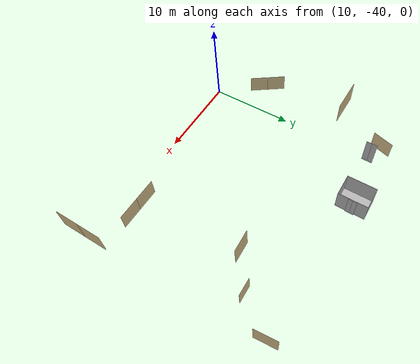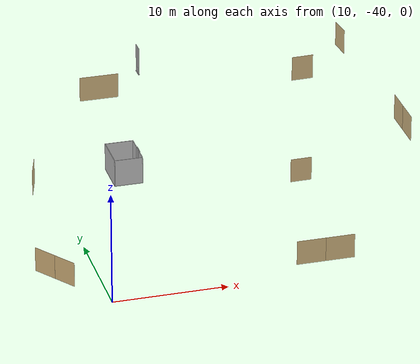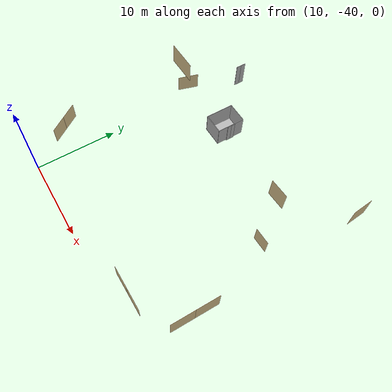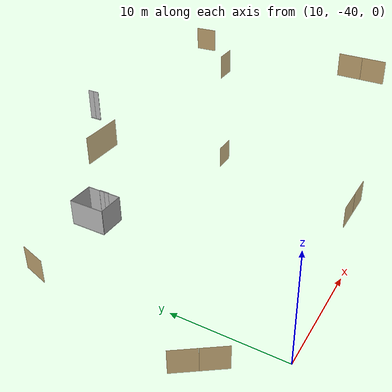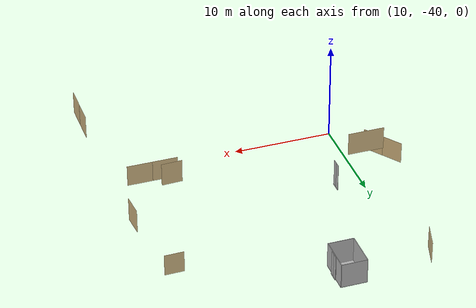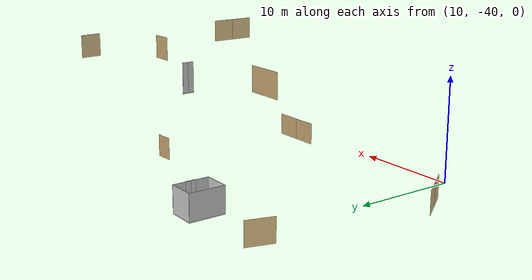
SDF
<sdf version="1.7">
 <world name="sim_world">
  <physics name="10ms" type="ode">
   <max_step_size>0.01</max_step_size>
   <real_time_factor>1.0</real_time_factor>
  </physics>
  <plugin filename="libgz-sim-physics-system.so" name="gz::sim::systems::Physics"/>
  <plugin filename="libgz-sim-user-commands-system.so" name="gz::sim::systems::UserCommands"/>
  <plugin filename="libgz-sim-scene-broadcaster-system.so" name="gz::sim::systems::SceneBroadcaster"/>
  <plugin filename="libdoor.so" name="door"/>
  <plugin filename="liblift.so" name="lift"/>
  <scene><ambient>1 1 1</ambient><background>0.8 0.8 0.8</background><grid>false</grid></scene>
  <light type="directional" name="sun">
   <pose>0 0 10 0 0 0</pose>
   <diffuse>1 1 1 1</diffuse>
   <specular>0.2 0.2 0.2 1</specular>
   <attenuation>
    <range>1000</range>
    <constant>0.09</constant>
    <linear>0.001</linear>
    <quadratic>0.001</quadratic>
   </attenuation>
   <direction>-0.5 0.1 -0.9</direction>
  </light>
  <model name="entrada_empleados">
   <pose>8.35510918424723 -18.084908833209635 0.0 0 0 1.2844318970957684</pose>
   <link name="right">
    <pose>0 0 1.11 0 0 0</pose>
    <visual name="right_visual">
     <geometry><box><size>2.586671070904746 0.03 2.2</size></box></geometry>
     <material>
      <ambient>0.5 0.25 0 0.6</ambient>
      <diffuse>0.5 0.25 0 0.6</diffuse>
      <pbr><metal><metalness>0.0</metalness></metal></pbr>
     </material>
    </visual>
    <collision name="right_collision">
     <geometry><box><size>2.586671070904746 0.03 2.2</size></box></geometry>
     <surface><contact><collide_bitmask>0x02</collide_bitmask></contact></surface>
    </collision>
    <inertial>
     <mass>50.0</mass>
     <inertia><ixx>20.17041666666667</ixx><iyy>48.045280121064614</iyy><izz>27.882363454397943</izz></inertia>
    </inertial>
   </link>
   <joint name="right_joint" type="revolute">
    <parent>world</parent>
    <child>right</child>
    <axis><xyz>0 0 1</xyz><limit><lower>0</lower><upper>1.57</upper></limit></axis>
    <pose>1.298335535452373 0 0 0 0 0</pose>
   </joint>
   <plugin name="register_component" filename="libregister_component.so">
    <component name="Door">
     <v_max_door>0.5</v_max_door>
     <a_max_door>0.3</a_max_door>
     <a_nom_door>0.15</a_nom_door>
     <dx_min_door>0.01</dx_min_door>
     <f_max_door>500.0</f_max_door>
     <ros_interface>true</ros_interface>
     <door name="entrada_empleados" type="SwingDoor" left_joint_name="empty_joint" right_joint_name="right_joint"/>
    </component>
   </plugin>
  </model>
  <model name="entrada_principal">
   <pose>6.362816506470544 -34.704769051808434 0.0 0 0 2.1781339014612144</pose>
   <link name="right">
    <pose>1.0993445821795196 0 1.11 0 0 0</pose>
    <visual name="right_visual">
     <geometry><box><size>2.1886891643590394 0.03 2.2</size></box></geometry>
     <material>
      <ambient>0.5 0.25 0 0.6</ambient>
      <diffuse>0.5 0.25 0 0.6</diffuse>
      <pbr><metal><metalness>0.0</metalness></metal></pbr>
     </material>
    </visual>
    <collision name="right_collision">
     <geometry><box><size>2.1886891643590394 0.03 2.2</size></box></geometry>
     <surface><contact><collide_bitmask>0x02</collide_bitmask></contact></surface>
    </collision>
    <inertial>
     <mass>50.0</mass>
     <inertia><ixx>20.17041666666667</ixx><iyy>40.12650107576113</iyy><izz>19.963584409094455</izz></inertia>
    </inertial>
   </link>
   <joint name="right_joint" type="revolute">
    <parent>world</parent>
    <child>right</child>
    <axis><xyz>0 0 1</xyz><limit><lower>0</lower><upper>1.57</upper></limit></axis>
    <pose>1.0993445821795196 0 0 0 0 0</pose>
   </joint>
   <link name="left">
    <pose>-1.0993445821795196 0 1.11 0 0 0</pose>
    <visual name="left_visual">
     <geometry><box><size>2.1886891643590394 0.03 2.2</size></box></geometry>
     <material>
      <ambient>0.5 0.25 0 0.6</ambient>
      <diffuse>0.5 0.25 0 0.6</diffuse>
      <pbr><metal><metalness>0.0</metalness></metal></pbr>
     </material>
    </visual>
    <collision name="left_collision">
     <geometry><box><size>2.1886891643590394 0.03 2.2</size></box></geometry>
     <surface><contact><collide_bitmask>0x02</collide_bitmask></contact></surface>
    </collision>
    <inertial>
     <mass>50.0</mass>
     <inertia><ixx>20.17041666666667</ixx><iyy>40.12650107576113</iyy><izz>19.963584409094455</izz></inertia>
    </inertial>
   </link>
   <joint name="left_joint" type="revolute">
    <parent>world</parent>
    <child>left</child>
    <axis><xyz>0 0 1</xyz><limit><lower>-1.57</lower><upper>0</upper></limit></axis>
    <pose>-1.0993445821795196 0 0 0 0 0</pose>
   </joint>
   <plugin name="register_component" filename="libregister_component.so">
    <component name="Door">
     <v_max_door>0.5</v_max_door>
     <a_max_door>0.3</a_max_door>
     <a_nom_door>0.15</a_nom_door>
     <dx_min_door>0.01</dx_min_door>
     <f_max_door>500.0</f_max_door>
     <ros_interface>true</ros_interface>
     <door name="entrada_principal" type="DoubleSwingDoor" left_joint_name="left_joint" right_joint_name="right_joint"/>
    </component>
   </plugin>
  </model>
  <model name="garaje">
   <pose>29.17348755031176 -37.88522881546682 0.0 0 0 3.141592653589793</pose>
   <link name="right">
    <pose>1.2815642738094226 0 1.11 0 0 0</pose>
    <visual name="right_visual">
     <geometry><box><size>2.5531285476188454 0.03 2.2</size></box></geometry>
     <material>
      <ambient>0.5 0.25 0 0.6</ambient>
      <diffuse>0.5 0.25 0 0.6</diffuse>
      <pbr><metal><metalness>0.0</metalness></metal></pbr>
     </material>
    </visual>
    <collision name="right_collision">
     <geometry><box><size>2.5531285476188454 0.03 2.2</size></box></geometry>
     <surface><contact><collide_bitmask>0x02</collide_bitmask></contact></surface>
    </collision>
    <inertial>
     <mass>50.0</mass>
     <inertia><ixx>20.17041666666667</ixx><iyy>47.326939086109654</iyy><izz>27.164022419442983</izz></inertia>
    </inertial>
   </link>
   <joint name="right_joint" type="revolute">
    <parent>world</parent>
    <child>right</child>
    <axis><xyz>0 0 1</xyz><limit><lower>0</lower><upper>1.57</upper></limit></axis>
    <pose>1.2815642738094226 0 0 0 0 0</pose>
   </joint>
   <link name="left">
    <pose>-1.2815642738094226 0 1.11 0 0 0</pose>
    <visual name="left_visual">
     <geometry><box><size>2.5531285476188454 0.03 2.2</size></box></geometry>
     <material>
      <ambient>0.5 0.25 0 0.6</ambient>
      <diffuse>0.5 0.25 0 0.6</diffuse>
      <pbr><metal><metalness>0.0</metalness></metal></pbr>
     </material>
    </visual>
    <collision name="left_collision">
     <geometry><box><size>2.5531285476188454 0.03 2.2</size></box></geometry>
     <surface><contact><collide_bitmask>0x02</collide_bitmask></contact></surface>
    </collision>
    <inertial>
     <mass>50.0</mass>
     <inertia><ixx>20.17041666666667</ixx><iyy>47.326939086109654</iyy><izz>27.164022419442983</izz></inertia>
    </inertial>
   </link>
   <joint name="left_joint" type="revolute">
    <parent>world</parent>
    <child>left</child>
    <axis><xyz>0 0 1</xyz><limit><lower>-1.57</lower><upper>0</upper></limit></axis>
    <pose>-1.2815642738094226 0 0 0 0 0</pose>
   </joint>
   <plugin name="register_component" filename="libregister_component.so">
    <component name="Door">
     <v_max_door>0.5</v_max_door>
     <a_max_door>0.3</a_max_door>
     <a_nom_door>0.15</a_nom_door>
     <dx_min_door>0.01</dx_min_door>
     <f_max_door>500.0</f_max_door>
     <ros_interface>true</ros_interface>
     <door name="garaje" type="DoubleSwingDoor" left_joint_name="left_joint" right_joint_name="right_joint"/>
    </component>
   </plugin>
  </model>
  <model name="baños">
   <pose>31.52051532984251 -23.078648384705737 0.0 0 0 -3.124139471009618</pose>
   <link name="right">
    <pose>0 0 1.11 0 0 0</pose>
    <visual name="right_visual">
     <geometry><box><size>1.915456096644865 0.03 2.2</size></box></geometry>
     <material>
      <ambient>0.5 0.25 0 0.6</ambient>
      <diffuse>0.5 0.25 0 0.6</diffuse>
      <pbr><metal><metalness>0.0</metalness></metal></pbr>
     </material>
    </visual>
    <collision name="right_collision">
     <geometry><box><size>1.915456096644865 0.03 2.2</size></box></geometry>
     <surface><contact><collide_bitmask>0x02</collide_bitmask></contact></surface>
    </collision>
    <inertial>
     <mass>50.0</mass>
     <inertia><ixx>20.17041666666667</ixx><iyy>35.454050242391595</iyy><izz>15.29113357572493</izz></inertia>
    </inertial>
   </link>
   <joint name="right_joint" type="revolute">
    <parent>world</parent>
    <child>right</child>
    <axis><xyz>0 0 1</xyz><limit><lower>0</lower><upper>1.57</upper></limit></axis>
    <pose>0.9627280483224325 0 0 0 0 0</pose>
   </joint>
   <plugin name="register_component" filename="libregister_component.so">
    <component name="Door">
     <v_max_door>0.5</v_max_door>
     <a_max_door>0.3</a_max_door>
     <a_nom_door>0.15</a_nom_door>
     <dx_min_door>0.01</dx_min_door>
     <f_max_door>500.0</f_max_door>
     <ros_interface>true</ros_interface>
     <door name="baños" type="SwingDoor" left_joint_name="empty_joint" right_joint_name="right_joint"/>
    </component>
   </plugin>
  </model>
  <model name="sala_reuniones">
   <pose>13.447925655872844 -22.200953351368575 10.0 0 0 3.141332672716464</pose>
   <link name="right">
    <pose>0 0 1.11 0 0 0</pose>
    <visual name="right_visual">
     <geometry><box><size>3.409900238666375 0.03 2.2</size></box></geometry>
     <material>
      <ambient>0.5 0.25 0 0.6</ambient>
      <diffuse>0.5 0.25 0 0.6</diffuse>
      <pbr><metal><metalness>0.0</metalness></metal></pbr>
     </material>
    </visual>
    <collision name="right_collision">
     <geometry><box><size>3.409900238666375 0.03 2.2</size></box></geometry>
     <surface><contact><collide_bitmask>0x02</collide_bitmask></contact></surface>
    </collision>
    <inertial>
     <mass>50.0</mass>
     <inertia><ixx>20.17041666666667</ixx><iyy>68.61424849023751</iyy><izz>48.45133182357084</izz></inertia>
    </inertial>
   </link>
   <joint name="right_joint" type="revolute">
    <parent>world</parent>
    <child>right</child>
    <axis><xyz>0 0 1</xyz><limit><lower>0</lower><upper>1.57</upper></limit></axis>
    <pose>1.7099501193331874 0 0 0 0 0</pose>
   </joint>
   <plugin name="register_component" filename="libregister_component.so">
    <component name="Door">
     <v_max_door>0.5</v_max_door>
     <a_max_door>0.3</a_max_door>
     <a_nom_door>0.15</a_nom_door>
     <dx_min_door>0.01</dx_min_door>
     <f_max_door>500.0</f_max_door>
     <ros_interface>true</ros_interface>
     <door name="sala_reuniones" type="SwingDoor" left_joint_name="empty_joint" right_joint_name="right_joint"/>
    </component>
   </plugin>
  </model>
  <model name="door29922">
   <pose>31.49732982719954 -23.114956673387873 10.0 0 0 -3.1017277562611008</pose>
   <link name="right">
    <pose>0 0 1.11 0 0 0</pose>
    <visual name="right_visual">
     <geometry><box><size>1.9156695532020782 0.03 2.2</size></box></geometry>
     <material>
      <ambient>0.5 0.25 0 0.6</ambient>
      <diffuse>0.5 0.25 0 0.6</diffuse>
      <pbr><metal><metalness>0.0</metalness></metal></pbr>
     </material>
    </visual>
    <collision name="right_collision">
     <geometry><box><size>1.9156695532020782 0.03 2.2</size></box></geometry>
     <surface><contact><collide_bitmask>0x02</collide_bitmask></contact></surface>
    </collision>
    <inertial>
     <mass>50.0</mass>
     <inertia><ixx>20.17041666666667</ixx><iyy>35.45745765443938</iyy><izz>15.29454098777271</izz></inertia>
    </inertial>
   </link>
   <joint name="right_joint" type="revolute">
    <parent>world</parent>
    <child>right</child>
    <axis><xyz>0 0 -1</xyz><limit><lower>0</lower><upper>1.57</upper></limit></axis>
    <pose>0.9628347766010391 0 0 0 0 0</pose>
   </joint>
   <plugin name="register_component" filename="libregister_component.so">
    <component name="Door">
     <v_max_door>0.5</v_max_door>
     <a_max_door>0.3</a_max_door>
     <a_nom_door>0.15</a_nom_door>
     <dx_min_door>0.01</dx_min_door>
     <f_max_door>500.0</f_max_door>
     <ros_interface>true</ros_interface>
     <door name="door29922" type="SwingDoor" left_joint_name="empty_joint" right_joint_name="right_joint"/>
    </component>
   </plugin>
  </model>
  <model name="door22122">
   <pose>36.53592065220261 -18.06733916956449 10.0 0 0 1.6477636321114808</pose>
   <link name="right">
    <pose>0 0 1.11 0 0 0</pose>
    <visual name="right_visual">
     <geometry><box><size>1.9975043759872164 0.03 2.2</size></box></geometry>
     <material>
      <ambient>0.5 0.25 0 0.6</ambient>
      <diffuse>0.5 0.25 0 0.6</diffuse>
      <pbr><metal><metalness>0.0</metalness></metal></pbr>
     </material>
    </visual>
    <collision name="right_collision">
     <geometry><box><size>1.9975043759872164 0.03 2.2</size></box></geometry>
     <surface><contact><collide_bitmask>0x02</collide_bitmask></contact></surface>
    </collision>
    <inertial>
     <mass>50.0</mass>
     <inertia><ixx>20.17041666666667</ixx><iyy>36.791765550367</iyy><izz>16.628848883700332</izz></inertia>
    </inertial>
   </link>
   <joint name="right_joint" type="revolute">
    <parent>world</parent>
    <child>right</child>
    <axis><xyz>0 0 -1</xyz><limit><lower>0</lower><upper>1.57</upper></limit></axis>
    <pose>1.0037521879936082 0 0 0 0 0</pose>
   </joint>
   <plugin name="register_component" filename="libregister_component.so">
    <component name="Door">
     <v_max_door>0.5</v_max_door>
     <a_max_door>0.3</a_max_door>
     <a_nom_door>0.15</a_nom_door>
     <dx_min_door>0.01</dx_min_door>
     <f_max_door>500.0</f_max_door>
     <ros_interface>true</ros_interface>
     <door name="door22122" type="SwingDoor" left_joint_name="empty_joint" right_joint_name="right_joint"/>
    </component>
   </plugin>
  </model>
  <model name="door_despacho">
   <pose>36.76564734422264 -34.89022961208454 10.0 0 0 1.5624425638586363</pose>
   <link name="right">
    <pose>1.1236718714765737 0 1.11 0 0 0</pose>
    <visual name="right_visual">
     <geometry><box><size>2.2373437429531475 0.03 2.2</size></box></geometry>
     <material>
      <ambient>0.5 0.25 0 0.6</ambient>
      <diffuse>0.5 0.25 0 0.6</diffuse>
      <pbr><metal><metalness>0.0</metalness></metal></pbr>
     </material>
    </visual>
    <collision name="right_collision">
     <geometry><box><size>2.2373437429531475 0.03 2.2</size></box></geometry>
     <surface><contact><collide_bitmask>0x02</collide_bitmask></contact></surface>
    </collision>
    <inertial>
     <mass>50.0</mass>
     <inertia><ixx>20.17041666666667</ixx><iyy>41.023779267215005</iyy><izz>20.860862600548334</izz></inertia>
    </inertial>
   </link>
   <joint name="right_joint" type="revolute">
    <parent>world</parent>
    <child>right</child>
    <axis><xyz>0 0 1</xyz><limit><lower>0</lower><upper>1.57</upper></limit></axis>
    <pose>1.1236718714765737 0 0 0 0 0</pose>
   </joint>
   <link name="left">
    <pose>-1.1236718714765737 0 1.11 0 0 0</pose>
    <visual name="left_visual">
     <geometry><box><size>2.2373437429531475 0.03 2.2</size></box></geometry>
     <material>
      <ambient>0.5 0.25 0 0.6</ambient>
      <diffuse>0.5 0.25 0 0.6</diffuse>
      <pbr><metal><metalness>0.0</metalness></metal></pbr>
     </material>
    </visual>
    <collision name="left_collision">
     <geometry><box><size>2.2373437429531475 0.03 2.2</size></box></geometry>
     <surface><contact><collide_bitmask>0x02</collide_bitmask></contact></surface>
    </collision>
    <inertial>
     <mass>50.0</mass>
     <inertia><ixx>20.17041666666667</ixx><iyy>41.023779267215005</iyy><izz>20.860862600548334</izz></inertia>
    </inertial>
   </link>
   <joint name="left_joint" type="revolute">
    <parent>world</parent>
    <child>left</child>
    <axis><xyz>0 0 1</xyz><limit><lower>-1.57</lower><upper>0</upper></limit></axis>
    <pose>-1.1236718714765737 0 0 0 0 0</pose>
   </joint>
   <plugin name="register_component" filename="libregister_component.so">
    <component name="Door">
     <v_max_door>0.5</v_max_door>
     <a_max_door>0.3</a_max_door>
     <a_nom_door>0.15</a_nom_door>
     <dx_min_door>0.01</dx_min_door>
     <f_max_door>500.0</f_max_door>
     <ros_interface>true</ros_interface>
     <door name="door_despacho" type="DoubleSwingDoor" left_joint_name="left_joint" right_joint_name="right_joint"/>
    </component>
   </plugin>
  </model>
  <model name="ShaftDoor_lift1_planta0_lift_door">
   <pose>17.996956068418857 -17.889028570236448 0.0 0 0 4.71</pose>
   <link name="right_door">
    <pose>0.25 0 1.25 0 0 0</pose>
    <visual name="right_door_visual">
     <geometry><box><size>0.5 0.03 2.5</size></box></geometry>
     <material>
      <ambient>0.5 0.5 0.5 1</ambient>
      <diffuse>0.7 0.7 0.7 1</diffuse>
      <specular>0.6 0.6 0.6 1</specular>
      <emissive>0.1 0.1 0.1 1</emissive>
     </material>
    </visual>
    <collision name="right_door_collision">
     <geometry><box><size>0.5 0.03 2.5</size></box></geometry>
     <surface><contact><collide_bitmask>0x02</collide_bitmask></contact></surface>
    </collision>
   </link>
   <link name="left_door">
    <pose>-0.25 0 1.25 0 0 0</pose>
    <visual name="left_door_visual">
     <geometry><box><size>0.5 0.03 2.5</size></box></geometry>
     <material>
      <ambient>0.5 0.5 0.5 1</ambient>
      <diffuse>0.7 0.7 0.7 1</diffuse>
      <specular>0.6 0.6 0.6 1</specular>
      <emissive>0.1 0.1 0.1 1</emissive>
     </material>
    </visual>
    <collision name="left_door_collision">
     <geometry><box><size>0.5 0.03 2.5</size></box></geometry>
     <surface><contact><collide_bitmask>0x02</collide_bitmask></contact></surface>
    </collision>
   </link>
   <joint name="right_joint" type="prismatic">
    <parent>world</parent>
    <child>right_door</child>
    <axis><xyz>1 0 0</xyz><limit><lower>0</lower><upper>0.5</upper></limit></axis>
   </joint>
   <joint name="left_joint" type="prismatic">
    <parent>world</parent>
    <child>left_door</child>
    <axis><xyz>1 0 0</xyz><limit><lower>-0.5</lower><upper>0</upper></limit></axis>
   </joint>
   <link name="ramp">
    <pose>0 0 -0.025 0 0 0</pose>
    <visual name="ramp_visual">
     <geometry><box><size>1.0 0.1 0.05</size></box></geometry>
     <material>
      <ambient>0.5 0.5 0.5 1</ambient>
      <diffuse>0.7 0.7 0.7 1</diffuse>
      <specular>0.6 0.6 0.6 1</specular>
      <emissive>0.1 0.1 0.1 1</emissive>
     </material>
    </visual>
    <collision name="ramp_collision">
     <geometry><box><size>1.0 0.1 0.05</size></box></geometry>
     <surface><contact><collide_bitmask>0x02</collide_bitmask></contact></surface>
    </collision>
   </link>
   <joint name="ramp_joint" type="fixed"><parent>world</parent><child>ramp</child></joint>
   <plugin name="register_component" filename="libregister_component.so">
    <component name="Door">
     <v_max_door>0.3</v_max_door>
     <a_max_door>0.2</a_max_door>
     <a_nom_door>0.1</a_nom_door>
     <dx_min_door>0.0001</dx_min_door>
     <f_max_door>35.0</f_max_door>
     <door left_joint_name="left_joint" name="ShaftDoor_lift1_planta0_lift_door" right_joint_name="right_joint" type="DoubleSlidingDoor"/>
    </component>
   </plugin>
  </model>
  <model name="ShaftDoor_lift1_planta1_lift_door">
   <pose>17.996956068418857 -17.889028570236448 10.0 0 0 4.71</pose>
   <link name="right_door">
    <pose>0.25 0 1.25 0 0 0</pose>
    <visual name="right_door_visual">
     <geometry><box><size>0.5 0.03 2.5</size></box></geometry>
     <material>
      <ambient>0.5 0.5 0.5 1</ambient>
      <diffuse>0.7 0.7 0.7 1</diffuse>
      <specular>0.6 0.6 0.6 1</specular>
      <emissive>0.1 0.1 0.1 1</emissive>
     </material>
    </visual>
    <collision name="right_door_collision">
     <geometry><box><size>0.5 0.03 2.5</size></box></geometry>
     <surface><contact><collide_bitmask>0x02</collide_bitmask></contact></surface>
    </collision>
   </link>
   <link name="left_door">
    <pose>-0.25 0 1.25 0 0 0</pose>
    <visual name="left_door_visual">
     <geometry><box><size>0.5 0.03 2.5</size></box></geometry>
     <material>
      <ambient>0.5 0.5 0.5 1</ambient>
      <diffuse>0.7 0.7 0.7 1</diffuse>
      <specular>0.6 0.6 0.6 1</specular>
      <emissive>0.1 0.1 0.1 1</emissive>
     </material>
    </visual>
    <collision name="left_door_collision">
     <geometry><box><size>0.5 0.03 2.5</size></box></geometry>
     <surface><contact><collide_bitmask>0x02</collide_bitmask></contact></surface>
    </collision>
   </link>
   <joint name="right_joint" type="prismatic">
    <parent>world</parent>
    <child>right_door</child>
    <axis><xyz>1 0 0</xyz><limit><lower>0</lower><upper>0.5</upper></limit></axis>
   </joint>
   <joint name="left_joint" type="prismatic">
    <parent>world</parent>
    <child>left_door</child>
    <axis><xyz>1 0 0</xyz><limit><lower>-0.5</lower><upper>0</upper></limit></axis>
   </joint>
   <link name="ramp">
    <pose>0 0 -0.025 0 0 0</pose>
    <visual name="ramp_visual">
     <geometry><box><size>1.0 0.1 0.05</size></box></geometry>
     <material>
      <ambient>0.5 0.5 0.5 1</ambient>
      <diffuse>0.7 0.7 0.7 1</diffuse>
      <specular>0.6 0.6 0.6 1</specular>
      <emissive>0.1 0.1 0.1 1</emissive>
     </material>
    </visual>
    <collision name="ramp_collision">
     <geometry><box><size>1.0 0.1 0.05</size></box></geometry>
     <surface><contact><collide_bitmask>0x02</collide_bitmask></contact></surface>
    </collision>
   </link>
   <joint name="ramp_joint" type="fixed"><parent>world</parent><child>ramp</child></joint>
   <plugin name="register_component" filename="libregister_component.so">
    <component name="Door">
     <v_max_door>0.3</v_max_door>
     <a_max_door>0.2</a_max_door>
     <a_nom_door>0.1</a_nom_door>
     <dx_min_door>0.0001</dx_min_door>
     <f_max_door>35.0</f_max_door>
     <door left_joint_name="left_joint" name="ShaftDoor_lift1_planta1_lift_door" right_joint_name="right_joint" type="DoubleSlidingDoor"/>
    </component>
   </plugin>
  </model>
  <model name="lift1">
   <link name="platform">
    <inertial>
     <mass>1200</mass>
     <inertia><ixx>1225.25</ixx><iyy>676.2500000000001</iyy><izz>1901.0000000000002</izz></inertia>
    </inertial>
    <visual name="floor_visual">
     <pose>0 0 -0.025 0 0 0</pose>
     <geometry><box><size>3.5 2.6 0.05</size></box></geometry>
     <material>
      <ambient>0.5 0.5 0.5 1</ambient>
      <diffuse>0.7 0.7 0.7 1</diffuse>
      <specular>0.6 0.6 0.6 1</specular>
      <emissive>0.1 0.1 0.1 1</emissive>
     </material>
    </visual>
    <collision name="floor_collision">
     <pose>0 0 -0.025 0 0 0</pose>
     <geometry><box><size>3.5 2.6 0.05</size></box></geometry>
     <surface><contact><collide_bitmask>0x01</collide_bitmask></contact></surface>
    </collision>
    <visual name="frontwall1_visual">
     <pose>-1.125 1.2750000000000001 1.25 0 0 0</pose>
     <geometry><box><size>1.25 0.05 2.5</size></box></geometry>
     <material>
      <ambient>0.5 0.5 0.5 1</ambient>
      <diffuse>0.7 0.7 0.7 1</diffuse>
      <specular>0.6 0.6 0.6 1</specular>
      <emissive>0.1 0.1 0.1 1</emissive>
     </material>
    </visual>
    <collision name="frontwall1_collision">
     <pose>-1.125 1.2750000000000001 1.25 0 0 0</pose>
     <geometry><box><size>1.25 0.05 2.5</size></box></geometry>
     <surface><contact><collide_bitmask>0x01</collide_bitmask></contact></surface>
    </collision>
    <visual name="frontwall2_visual">
     <pose>1.125 1.2750000000000001 1.25 0 0 0</pose>
     <geometry><box><size>1.25 0.05 2.5</size></box></geometry>
     <material>
      <ambient>0.5 0.5 0.5 1</ambient>
      <diffuse>0.7 0.7 0.7 1</diffuse>
      <specular>0.6 0.6 0.6 1</specular>
      <emissive>0.1 0.1 0.1 1</emissive>
     </material>
    </visual>
    <collision name="frontwall2_collision">
     <pose>1.125 1.2750000000000001 1.25 0 0 0</pose>
     <geometry><box><size>1.25 0.05 2.5</size></box></geometry>
     <surface><contact><collide_bitmask>0x01</collide_bitmask></contact></surface>
    </collision>
    <visual name="backwall1_visual">
     <pose>0.0 -1.2750000000000001 1.25 0 0 0</pose>
     <geometry><box><size>3.5 0.05 2.5</size></box></geometry>
     <material>
      <ambient>0.5 0.5 0.5 1</ambient>
      <diffuse>0.7 0.7 0.7 1</diffuse>
      <specular>0.6 0.6 0.6 1</specular>
      <emissive>0.1 0.1 0.1 1</emissive>
     </material>
    </visual>
    <collision name="backwall1_collision">
     <pose>0.0 -1.2750000000000001 1.25 0 0 0</pose>
     <geometry><box><size>3.5 0.05 2.5</size></box></geometry>
     <surface><contact><collide_bitmask>0x01</collide_bitmask></contact></surface>
    </collision>
    <visual name="leftwall1_visual">
     <pose>-1.725 0.0 1.25 0 0 1.5707963267948966</pose>
     <geometry><box><size>2.5 0.05 2.5</size></box></geometry>
     <material>
      <ambient>0.5 0.5 0.5 1</ambient>
      <diffuse>0.7 0.7 0.7 1</diffuse>
      <specular>0.6 0.6 0.6 1</specular>
      <emissive>0.1 0.1 0.1 1</emissive>
     </material>
    </visual>
    <collision name="leftwall1_collision">
     <pose>-1.725 0.0 1.25 0 0 1.5707963267948966</pose>
     <geometry><box><size>2.5 0.05 2.5</size></box></geometry>
     <surface><contact><collide_bitmask>0x01</collide_bitmask></contact></surface>
    </collision>
    <visual name="rightwall1_visual">
     <pose>1.725 0.0 1.25 0 0 1.5707963267948966</pose>
     <geometry><box><size>2.5 0.05 2.5</size></box></geometry>
     <material>
      <ambient>0.5 0.5 0.5 1</ambient>
      <diffuse>0.7 0.7 0.7 1</diffuse>
      <specular>0.6 0.6 0.6 1</specular>
      <emissive>0.1 0.1 0.1 1</emissive>
     </material>
    </visual>
    <collision name="rightwall1_collision">
     <pose>1.725 0.0 1.25 0 0 1.5707963267948966</pose>
     <geometry><box><size>2.5 0.05 2.5</size></box></geometry>
     <surface><contact><collide_bitmask>0x01</collide_bitmask></contact></surface>
    </collision>
   </link>
   <joint name="cabin_joint" type="prismatic">
    <parent>world</parent>
    <child>platform</child>
    <axis><xyz>0 0 1</xyz></axis>
   </joint>
   <model name="CabinDoor_lift1_lift_door">
    <pose>0.0 1.2750000000000001 0 0 0 0.0</pose>
    <link name="right_door">
     <pose>0.25 0 1.25 0 0 0</pose>
     <visual name="right_door_visual">
      <geometry><box><size>0.5 0.03 2.5</size></box></geometry>
      <material>
       <ambient>0.5 0.5 0.5 1</ambient>
       <diffuse>0.7 0.7 0.7 1</diffuse>
       <specular>0.6 0.6 0.6 1</specular>
       <emissive>0.1 0.1 0.1 1</emissive>
      </material>
     </visual>
     <collision name="right_door_collision">
      <geometry><box><size>0.5 0.03 2.5</size></box></geometry>
      <surface><contact><collide_bitmask>0x02</collide_bitmask></contact></surface>
     </collision>
    </link>
    <link name="left_door">
     <pose>-0.25 0 1.25 0 0 0</pose>
     <visual name="left_door_visual">
      <geometry><box><size>0.5 0.03 2.5</size></box></geometry>
      <material>
       <ambient>0.5 0.5 0.5 1</ambient>
       <diffuse>0.7 0.7 0.7 1</diffuse>
       <specular>0.6 0.6 0.6 1</specular>
       <emissive>0.1 0.1 0.1 1</emissive>
      </material>
     </visual>
     <collision name="left_door_collision">
      <geometry><box><size>0.5 0.03 2.5</size></box></geometry>
      <surface><contact><collide_bitmask>0x02</collide_bitmask></contact></surface>
     </collision>
    </link>
    <plugin name="register_component" filename="libregister_component.so">
     <component name="Door">
      <v_max_door>0.3</v_max_door>
      <a_max_door>0.2</a_max_door>
      <a_nom_door>0.1</a_nom_door>
      <dx_min_door>0.0001</dx_min_door>
      <f_max_door>35.0</f_max_door>
      <door left_joint_name="CabinDoor_lift1_lift_door_left_joint" name="CabinDoor_lift1_lift_door" right_joint_name="CabinDoor_lift1_lift_door_right_joint" type="DoubleSlidingDoor"/>
     </component>
    </plugin>
   </model>
   <joint name="CabinDoor_lift1_lift_door_right_joint" type="prismatic">
    <parent>platform</parent>
    <child>CabinDoor_lift1_lift_door::right_door</child>
    <axis><xyz>1 0 0</xyz><limit><lower>0</lower><upper>0.5</upper></limit></axis>
   </joint>
   <joint name="CabinDoor_lift1_lift_door_left_joint" type="prismatic">
    <parent>platform</parent>
    <child>CabinDoor_lift1_lift_door::left_door</child>
    <axis><xyz>1 0 0</xyz><limit><lower>-0.5</lower><upper>0</upper></limit></axis>
   </joint>
   <plugin name="register_component" filename="libregister_component.so">
    <component name="Lift">
     <lift_name>lift1</lift_name>
     <floor name="planta0" elevation="0.0">
      <door_pair cabin_door="CabinDoor_lift1_lift_door" shaft_door="ShaftDoor_lift1_planta0_lift_door"/>
     </floor>
     <floor name="planta1" elevation="10.0">
      <door_pair cabin_door="CabinDoor_lift1_lift_door" shaft_door="ShaftDoor_lift1_planta1_lift_door"/>
     </floor>
     <initial_floor>planta0</initial_floor>
     <v_max_cabin>2.0</v_max_cabin>
     <a_max_cabin>1.2</a_max_cabin>
     <a_nom_cabin>1.0</a_nom_cabin>
     <dx_min_cabin>0.001</dx_min_cabin>
     <f_max_cabin>25323.0</f_max_cabin>
     <cabin_joint_name>cabin_joint</cabin_joint_name>
    </component>
   </plugin>
   <pose>16.64695992079544 -17.885803449784866 0 0 0 4.71</pose>
  </model>
  <rmf_charger_waypoints name="charger_waypoints">
   <rmf_vertex name="tinyRobot1_charger" x="26.558327574475356" y="-20.801499122982044" level="planta0"/>
  </rmf_charger_waypoints>
 </world>
</sdf>
